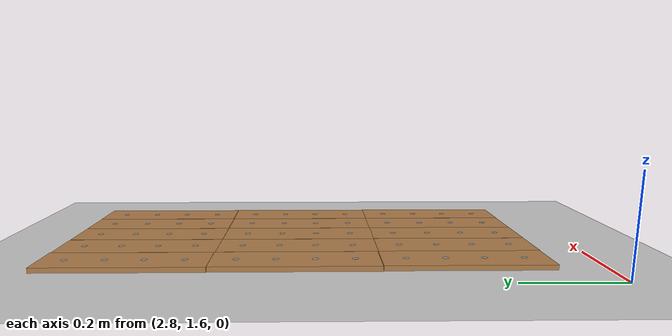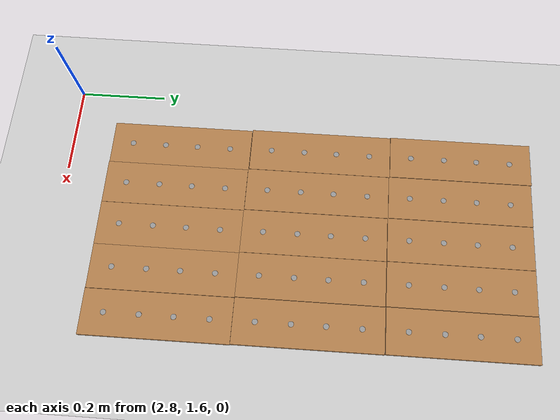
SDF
<sdf version="1.7">
 <world name="default">
  <model name="ground_plane">
   <static>1</static>
   <link name="link">
    <collision name="collision">
     <geometry><plane><normal>0 0 1</normal><size>100 100</size></plane></geometry>
     <surface><friction><ode><mu>100</mu><mu2>50</mu2></ode></friction></surface>
    </collision>
    <visual name="visual">
     <cast_shadows>0</cast_shadows>
     <geometry><plane><normal>0 0 1</normal><size>100 100</size></plane></geometry>
     <material>
      <script><uri>file://media/materials/scripts/gazebo.material</uri><name>Gazebo/Grey</name></script>
     </material>
    </visual>
   </link>
  </model>
  <model name="wooden_board">
   <link name="base">
    <pose>0 0 0.00523 0 -0 0</pose>
    <inertial>
     <mass>0.2765</mass>
     <inertia>
      <ixx>0.0025148</ixx>
      <ixy>0</ixy>
      <ixz>0</ixz>
      <iyy>0.00024037</iyy>
      <iyz>0</iyz>
      <izz>0.00275013</izz>
     </inertia>
    </inertial>
    <collision name="collision">
     <geometry><box><size>0.1016 0.3302 0.01046</size></box></geometry>
     <surface>
      <contact>
       <poissons_ratio>0.347</poissons_ratio>
       <elastic_modulus>8.8e+09</elastic_modulus>
       <ode><kp>100000</kp><kd>100</kd><max_vel>100</max_vel><min_depth>0.001</min_depth></ode>
      </contact>
      <friction>
       <torsional>
        <coefficient>1</coefficient>
        <use_patch_radius>0</use_patch_radius>
        <surface_radius>0.01</surface_radius>
       </torsional>
      </friction>
     </surface>
    </collision>
    <visual name="visual">
     <geometry><box><size>0.1016 0.3302 0.01046</size></box></geometry>
     <material>
      <script><uri>file://media/materials/scripts/gazebo.material</uri><name>Gazebo/Wood</name></script>
     </material>
    </visual>
    <visual name="tee_nut_1">
     <pose>0 -0.116 0 0 -0 0</pose>
     <geometry><cylinder><radius>0.00635</radius><length>0.0105646</length></cylinder></geometry>
     <material>
      <script><uri>file://media/materials/scripts/gazebo.material</uri><name>Gazebo/Grey</name></script>
     </material>
    </visual>
    <visual name="tee_nut_2">
     <pose>0 -0.038 0 0 -0 0</pose>
     <geometry><cylinder><radius>0.00635</radius><length>0.0105646</length></cylinder></geometry>
     <material>
      <script><uri>file://media/materials/scripts/gazebo.material</uri><name>Gazebo/Grey</name></script>
     </material>
    </visual>
    <visual name="tee_nut_3">
     <pose>0 0.038 0 0 -0 0</pose>
     <geometry><cylinder><radius>0.00635</radius><length>0.0105646</length></cylinder></geometry>
     <material>
      <script><uri>file://media/materials/scripts/gazebo.material</uri><name>Gazebo/Grey</name></script>
     </material>
    </visual>
    <visual name="tee_nut_4">
     <pose>0 0.116 0 0 -0 0</pose>
     <geometry><cylinder><radius>0.00635</radius><length>0.0105646</length></cylinder></geometry>
     <material>
      <script><uri>file://media/materials/scripts/gazebo.material</uri><name>Gazebo/Grey</name></script>
     </material>
    </visual>
   </link>
   <pose>2.92931 1.86181 -0.001007 0 -0 -5.4e-05</pose>
  </model>
  <model name="wooden_board_clone">
   <link name="base">
    <pose>0 0 0.00523 0 -0 0</pose>
    <inertial>
     <mass>0.2765</mass>
     <inertia>
      <ixx>0.0025148</ixx>
      <ixy>0</ixy>
      <ixz>0</ixz>
      <iyy>0.00024037</iyy>
      <iyz>0</iyz>
      <izz>0.00275013</izz>
     </inertia>
    </inertial>
    <collision name="collision">
     <geometry><box><size>0.1016 0.3302 0.01046</size></box></geometry>
     <surface>
      <contact>
       <poissons_ratio>0.347</poissons_ratio>
       <elastic_modulus>8.8e+09</elastic_modulus>
       <ode><kp>100000</kp><kd>100</kd><max_vel>100</max_vel><min_depth>0.001</min_depth></ode>
      </contact>
      <friction>
       <torsional>
        <coefficient>1</coefficient>
        <use_patch_radius>0</use_patch_radius>
        <surface_radius>0.01</surface_radius>
       </torsional>
      </friction>
     </surface>
    </collision>
    <visual name="visual">
     <geometry><box><size>0.1016 0.3302 0.01046</size></box></geometry>
     <material>
      <script><uri>file://media/materials/scripts/gazebo.material</uri><name>Gazebo/Wood</name></script>
     </material>
    </visual>
    <visual name="tee_nut_1">
     <pose>0 -0.116 0 0 -0 0</pose>
     <geometry><cylinder><radius>0.00635</radius><length>0.0105646</length></cylinder></geometry>
     <material>
      <script><uri>file://media/materials/scripts/gazebo.material</uri><name>Gazebo/Grey</name></script>
     </material>
    </visual>
    <visual name="tee_nut_2">
     <pose>0 -0.038 0 0 -0 0</pose>
     <geometry><cylinder><radius>0.00635</radius><length>0.0105646</length></cylinder></geometry>
     <material>
      <script><uri>file://media/materials/scripts/gazebo.material</uri><name>Gazebo/Grey</name></script>
     </material>
    </visual>
    <visual name="tee_nut_3">
     <pose>0 0.038 0 0 -0 0</pose>
     <geometry><cylinder><radius>0.00635</radius><length>0.0105646</length></cylinder></geometry>
     <material>
      <script><uri>file://media/materials/scripts/gazebo.material</uri><name>Gazebo/Grey</name></script>
     </material>
    </visual>
    <visual name="tee_nut_4">
     <pose>0 0.116 0 0 -0 0</pose>
     <geometry><cylinder><radius>0.00635</radius><length>0.0105646</length></cylinder></geometry>
     <material>
      <script><uri>file://media/materials/scripts/gazebo.material</uri><name>Gazebo/Grey</name></script>
     </material>
    </visual>
   </link>
   <pose>3.03066 1.8608 -0.001007 -0 -0 -0</pose>
  </model>
  <model name="wooden_board_clone_0">
   <link name="base">
    <pose>0 0 0.00523 0 -0 0</pose>
    <inertial>
     <mass>0.2765</mass>
     <inertia>
      <ixx>0.0025148</ixx>
      <ixy>0</ixy>
      <ixz>0</ixz>
      <iyy>0.00024037</iyy>
      <iyz>0</iyz>
      <izz>0.00275013</izz>
     </inertia>
    </inertial>
    <collision name="collision">
     <geometry><box><size>0.1016 0.3302 0.01046</size></box></geometry>
     <surface>
      <contact>
       <poissons_ratio>0.347</poissons_ratio>
       <elastic_modulus>8.8e+09</elastic_modulus>
       <ode><kp>100000</kp><kd>100</kd><max_vel>100</max_vel><min_depth>0.001</min_depth></ode>
      </contact>
      <friction>
       <torsional>
        <coefficient>1</coefficient>
        <use_patch_radius>0</use_patch_radius>
        <surface_radius>0.01</surface_radius>
       </torsional>
      </friction>
     </surface>
    </collision>
    <visual name="visual">
     <geometry><box><size>0.1016 0.3302 0.01046</size></box></geometry>
     <material>
      <script><uri>file://media/materials/scripts/gazebo.material</uri><name>Gazebo/Wood</name></script>
     </material>
    </visual>
    <visual name="tee_nut_1">
     <pose>0 -0.116 0 0 -0 0</pose>
     <geometry><cylinder><radius>0.00635</radius><length>0.0105646</length></cylinder></geometry>
     <material>
      <script><uri>file://media/materials/scripts/gazebo.material</uri><name>Gazebo/Grey</name></script>
     </material>
    </visual>
    <visual name="tee_nut_2">
     <pose>0 -0.038 0 0 -0 0</pose>
     <geometry><cylinder><radius>0.00635</radius><length>0.0105646</length></cylinder></geometry>
     <material>
      <script><uri>file://media/materials/scripts/gazebo.material</uri><name>Gazebo/Grey</name></script>
     </material>
    </visual>
    <visual name="tee_nut_3">
     <pose>0 0.038 0 0 -0 0</pose>
     <geometry><cylinder><radius>0.00635</radius><length>0.0105646</length></cylinder></geometry>
     <material>
      <script><uri>file://media/materials/scripts/gazebo.material</uri><name>Gazebo/Grey</name></script>
     </material>
    </visual>
    <visual name="tee_nut_4">
     <pose>0 0.116 0 0 -0 0</pose>
     <geometry><cylinder><radius>0.00635</radius><length>0.0105646</length></cylinder></geometry>
     <material>
      <script><uri>file://media/materials/scripts/gazebo.material</uri><name>Gazebo/Grey</name></script>
     </material>
    </visual>
   </link>
   <pose>3.1325 1.86061 -0.001007 0 -0 0</pose>
  </model>
  <model name="wooden_board_clone_1">
   <link name="base">
    <pose>0 0 0.00523 0 -0 0</pose>
    <inertial>
     <mass>0.2765</mass>
     <inertia>
      <ixx>0.0025148</ixx>
      <ixy>0</ixy>
      <ixz>0</ixz>
      <iyy>0.00024037</iyy>
      <iyz>0</iyz>
      <izz>0.00275013</izz>
     </inertia>
    </inertial>
    <collision name="collision">
     <geometry><box><size>0.1016 0.3302 0.01046</size></box></geometry>
     <surface>
      <contact>
       <poissons_ratio>0.347</poissons_ratio>
       <elastic_modulus>8.8e+09</elastic_modulus>
       <ode><kp>100000</kp><kd>100</kd><max_vel>100</max_vel><min_depth>0.001</min_depth></ode>
      </contact>
      <friction>
       <torsional>
        <coefficient>1</coefficient>
        <use_patch_radius>0</use_patch_radius>
        <surface_radius>0.01</surface_radius>
       </torsional>
      </friction>
     </surface>
    </collision>
    <visual name="visual">
     <geometry><box><size>0.1016 0.3302 0.01046</size></box></geometry>
     <material>
      <script><uri>file://media/materials/scripts/gazebo.material</uri><name>Gazebo/Wood</name></script>
     </material>
    </visual>
    <visual name="tee_nut_1">
     <pose>0 -0.116 0 0 -0 0</pose>
     <geometry><cylinder><radius>0.00635</radius><length>0.0105646</length></cylinder></geometry>
     <material>
      <script><uri>file://media/materials/scripts/gazebo.material</uri><name>Gazebo/Grey</name></script>
     </material>
    </visual>
    <visual name="tee_nut_2">
     <pose>0 -0.038 0 0 -0 0</pose>
     <geometry><cylinder><radius>0.00635</radius><length>0.0105646</length></cylinder></geometry>
     <material>
      <script><uri>file://media/materials/scripts/gazebo.material</uri><name>Gazebo/Grey</name></script>
     </material>
    </visual>
    <visual name="tee_nut_3">
     <pose>0 0.038 0 0 -0 0</pose>
     <geometry><cylinder><radius>0.00635</radius><length>0.0105646</length></cylinder></geometry>
     <material>
      <script><uri>file://media/materials/scripts/gazebo.material</uri><name>Gazebo/Grey</name></script>
     </material>
    </visual>
    <visual name="tee_nut_4">
     <pose>0 0.116 0 0 -0 0</pose>
     <geometry><cylinder><radius>0.00635</radius><length>0.0105646</length></cylinder></geometry>
     <material>
      <script><uri>file://media/materials/scripts/gazebo.material</uri><name>Gazebo/Grey</name></script>
     </material>
    </visual>
   </link>
   <pose>3.23405 1.86073 -0.001007 -0 -0 -0</pose>
  </model>
  <model name="wooden_board_clone_2">
   <link name="base">
    <pose>0 0 0.00523 0 -0 0</pose>
    <inertial>
     <mass>0.2765</mass>
     <inertia>
      <ixx>0.0025148</ixx>
      <ixy>0</ixy>
      <ixz>0</ixz>
      <iyy>0.00024037</iyy>
      <iyz>0</iyz>
      <izz>0.00275013</izz>
     </inertia>
    </inertial>
    <collision name="collision">
     <geometry><box><size>0.1016 0.3302 0.01046</size></box></geometry>
     <surface>
      <contact>
       <poissons_ratio>0.347</poissons_ratio>
       <elastic_modulus>8.8e+09</elastic_modulus>
       <ode><kp>100000</kp><kd>100</kd><max_vel>100</max_vel><min_depth>0.001</min_depth></ode>
      </contact>
      <friction>
       <torsional>
        <coefficient>1</coefficient>
        <use_patch_radius>0</use_patch_radius>
        <surface_radius>0.01</surface_radius>
       </torsional>
      </friction>
     </surface>
    </collision>
    <visual name="visual">
     <geometry><box><size>0.1016 0.3302 0.01046</size></box></geometry>
     <material>
      <script><uri>file://media/materials/scripts/gazebo.material</uri><name>Gazebo/Wood</name></script>
     </material>
    </visual>
    <visual name="tee_nut_1">
     <pose>0 -0.116 0 0 -0 0</pose>
     <geometry><cylinder><radius>0.00635</radius><length>0.0105646</length></cylinder></geometry>
     <material>
      <script><uri>file://media/materials/scripts/gazebo.material</uri><name>Gazebo/Grey</name></script>
     </material>
    </visual>
    <visual name="tee_nut_2">
     <pose>0 -0.038 0 0 -0 0</pose>
     <geometry><cylinder><radius>0.00635</radius><length>0.0105646</length></cylinder></geometry>
     <material>
      <script><uri>file://media/materials/scripts/gazebo.material</uri><name>Gazebo/Grey</name></script>
     </material>
    </visual>
    <visual name="tee_nut_3">
     <pose>0 0.038 0 0 -0 0</pose>
     <geometry><cylinder><radius>0.00635</radius><length>0.0105646</length></cylinder></geometry>
     <material>
      <script><uri>file://media/materials/scripts/gazebo.material</uri><name>Gazebo/Grey</name></script>
     </material>
    </visual>
    <visual name="tee_nut_4">
     <pose>0 0.116 0 0 -0 0</pose>
     <geometry><cylinder><radius>0.00635</radius><length>0.0105646</length></cylinder></geometry>
     <material>
      <script><uri>file://media/materials/scripts/gazebo.material</uri><name>Gazebo/Grey</name></script>
     </material>
    </visual>
   </link>
   <pose>3.33629 1.86003 -0.001007 0 -0 0</pose>
  </model>
  <model name="wooden_board_clone_13">
   <link name="base">
    <pose>0 0 0.00523 0 -0 0</pose>
    <inertial>
     <mass>0.2765</mass>
     <inertia>
      <ixx>0.0025148</ixx>
      <ixy>0</ixy>
      <ixz>0</ixz>
      <iyy>0.00024037</iyy>
      <iyz>0</iyz>
      <izz>0.00275013</izz>
     </inertia>
    </inertial>
    <collision name="collision">
     <geometry><box><size>0.1016 0.3302 0.01046</size></box></geometry>
     <surface>
      <contact>
       <poissons_ratio>0.347</poissons_ratio>
       <elastic_modulus>8.8e+09</elastic_modulus>
       <ode><kp>100000</kp><kd>100</kd><max_vel>100</max_vel><min_depth>0.001</min_depth></ode>
      </contact>
      <friction>
       <torsional>
        <coefficient>1</coefficient>
        <use_patch_radius>0</use_patch_radius>
        <surface_radius>0.01</surface_radius>
       </torsional>
      </friction>
     </surface>
    </collision>
    <visual name="visual">
     <geometry><box><size>0.1016 0.3302 0.01046</size></box></geometry>
     <material>
      <script><uri>file://media/materials/scripts/gazebo.material</uri><name>Gazebo/Wood</name></script>
     </material>
    </visual>
    <visual name="tee_nut_1">
     <pose>0 -0.116 0 0 -0 0</pose>
     <geometry><cylinder><radius>0.00635</radius><length>0.0105646</length></cylinder></geometry>
     <material>
      <script><uri>file://media/materials/scripts/gazebo.material</uri><name>Gazebo/Grey</name></script>
     </material>
    </visual>
    <visual name="tee_nut_2">
     <pose>0 -0.038 0 0 -0 0</pose>
     <geometry><cylinder><radius>0.00635</radius><length>0.0105646</length></cylinder></geometry>
     <material>
      <script><uri>file://media/materials/scripts/gazebo.material</uri><name>Gazebo/Grey</name></script>
     </material>
    </visual>
    <visual name="tee_nut_3">
     <pose>0 0.038 0 0 -0 0</pose>
     <geometry><cylinder><radius>0.00635</radius><length>0.0105646</length></cylinder></geometry>
     <material>
      <script><uri>file://media/materials/scripts/gazebo.material</uri><name>Gazebo/Grey</name></script>
     </material>
    </visual>
    <visual name="tee_nut_4">
     <pose>0 0.116 0 0 -0 0</pose>
     <geometry><cylinder><radius>0.00635</radius><length>0.0105646</length></cylinder></geometry>
     <material>
      <script><uri>file://media/materials/scripts/gazebo.material</uri><name>Gazebo/Grey</name></script>
     </material>
    </visual>
   </link>
   <pose>3.33522 2.19045 -0.001007 0 -0 0</pose>
  </model>
  <model name="wooden_board_clone_14">
   <link name="base">
    <pose>0 0 0.00523 0 -0 0</pose>
    <inertial>
     <mass>0.2765</mass>
     <inertia>
      <ixx>0.0025148</ixx>
      <ixy>0</ixy>
      <ixz>0</ixz>
      <iyy>0.00024037</iyy>
      <iyz>0</iyz>
      <izz>0.00275013</izz>
     </inertia>
    </inertial>
    <collision name="collision">
     <geometry><box><size>0.1016 0.3302 0.01046</size></box></geometry>
     <surface>
      <contact>
       <poissons_ratio>0.347</poissons_ratio>
       <elastic_modulus>8.8e+09</elastic_modulus>
       <ode><kp>100000</kp><kd>100</kd><max_vel>100</max_vel><min_depth>0.001</min_depth></ode>
      </contact>
      <friction>
       <torsional>
        <coefficient>1</coefficient>
        <use_patch_radius>0</use_patch_radius>
        <surface_radius>0.01</surface_radius>
       </torsional>
      </friction>
     </surface>
    </collision>
    <visual name="visual">
     <geometry><box><size>0.1016 0.3302 0.01046</size></box></geometry>
     <material>
      <script><uri>file://media/materials/scripts/gazebo.material</uri><name>Gazebo/Wood</name></script>
     </material>
    </visual>
    <visual name="tee_nut_1">
     <pose>0 -0.116 0 0 -0 0</pose>
     <geometry><cylinder><radius>0.00635</radius><length>0.0105646</length></cylinder></geometry>
     <material>
      <script><uri>file://media/materials/scripts/gazebo.material</uri><name>Gazebo/Grey</name></script>
     </material>
    </visual>
    <visual name="tee_nut_2">
     <pose>0 -0.038 0 0 -0 0</pose>
     <geometry><cylinder><radius>0.00635</radius><length>0.0105646</length></cylinder></geometry>
     <material>
      <script><uri>file://media/materials/scripts/gazebo.material</uri><name>Gazebo/Grey</name></script>
     </material>
    </visual>
    <visual name="tee_nut_3">
     <pose>0 0.038 0 0 -0 0</pose>
     <geometry><cylinder><radius>0.00635</radius><length>0.0105646</length></cylinder></geometry>
     <material>
      <script><uri>file://media/materials/scripts/gazebo.material</uri><name>Gazebo/Grey</name></script>
     </material>
    </visual>
    <visual name="tee_nut_4">
     <pose>0 0.116 0 0 -0 0</pose>
     <geometry><cylinder><radius>0.00635</radius><length>0.0105646</length></cylinder></geometry>
     <material>
      <script><uri>file://media/materials/scripts/gazebo.material</uri><name>Gazebo/Grey</name></script>
     </material>
    </visual>
   </link>
   <pose>3.23269 2.19005 -0.001007 0 -0 0</pose>
  </model>
  <model name="wooden_board_clone_15">
   <link name="base">
    <pose>0 0 0.00523 0 -0 0</pose>
    <inertial>
     <mass>0.2765</mass>
     <inertia>
      <ixx>0.0025148</ixx>
      <ixy>0</ixy>
      <ixz>0</ixz>
      <iyy>0.00024037</iyy>
      <iyz>0</iyz>
      <izz>0.00275013</izz>
     </inertia>
    </inertial>
    <collision name="collision">
     <geometry><box><size>0.1016 0.3302 0.01046</size></box></geometry>
     <surface>
      <contact>
       <poissons_ratio>0.347</poissons_ratio>
       <elastic_modulus>8.8e+09</elastic_modulus>
       <ode><kp>100000</kp><kd>100</kd><max_vel>100</max_vel><min_depth>0.001</min_depth></ode>
      </contact>
      <friction>
       <torsional>
        <coefficient>1</coefficient>
        <use_patch_radius>0</use_patch_radius>
        <surface_radius>0.01</surface_radius>
       </torsional>
      </friction>
     </surface>
    </collision>
    <visual name="visual">
     <geometry><box><size>0.1016 0.3302 0.01046</size></box></geometry>
     <material>
      <script><uri>file://media/materials/scripts/gazebo.material</uri><name>Gazebo/Wood</name></script>
     </material>
    </visual>
    <visual name="tee_nut_1">
     <pose>0 -0.116 0 0 -0 0</pose>
     <geometry><cylinder><radius>0.00635</radius><length>0.0105646</length></cylinder></geometry>
     <material>
      <script><uri>file://media/materials/scripts/gazebo.material</uri><name>Gazebo/Grey</name></script>
     </material>
    </visual>
    <visual name="tee_nut_2">
     <pose>0 -0.038 0 0 -0 0</pose>
     <geometry><cylinder><radius>0.00635</radius><length>0.0105646</length></cylinder></geometry>
     <material>
      <script><uri>file://media/materials/scripts/gazebo.material</uri><name>Gazebo/Grey</name></script>
     </material>
    </visual>
    <visual name="tee_nut_3">
     <pose>0 0.038 0 0 -0 0</pose>
     <geometry><cylinder><radius>0.00635</radius><length>0.0105646</length></cylinder></geometry>
     <material>
      <script><uri>file://media/materials/scripts/gazebo.material</uri><name>Gazebo/Grey</name></script>
     </material>
    </visual>
    <visual name="tee_nut_4">
     <pose>0 0.116 0 0 -0 0</pose>
     <geometry><cylinder><radius>0.00635</radius><length>0.0105646</length></cylinder></geometry>
     <material>
      <script><uri>file://media/materials/scripts/gazebo.material</uri><name>Gazebo/Grey</name></script>
     </material>
    </visual>
   </link>
   <pose>3.13073 2.19028 -0.001007 -0 -0 -0</pose>
  </model>
  <model name="wooden_board_clone_16">
   <link name="base">
    <pose>0 0 0.00523 0 -0 0</pose>
    <inertial>
     <mass>0.2765</mass>
     <inertia>
      <ixx>0.0025148</ixx>
      <ixy>0</ixy>
      <ixz>0</ixz>
      <iyy>0.00024037</iyy>
      <iyz>0</iyz>
      <izz>0.00275013</izz>
     </inertia>
    </inertial>
    <collision name="collision">
     <geometry><box><size>0.1016 0.3302 0.01046</size></box></geometry>
     <surface>
      <contact>
       <poissons_ratio>0.347</poissons_ratio>
       <elastic_modulus>8.8e+09</elastic_modulus>
       <ode><kp>100000</kp><kd>100</kd><max_vel>100</max_vel><min_depth>0.001</min_depth></ode>
      </contact>
      <friction>
       <torsional>
        <coefficient>1</coefficient>
        <use_patch_radius>0</use_patch_radius>
        <surface_radius>0.01</surface_radius>
       </torsional>
      </friction>
     </surface>
    </collision>
    <visual name="visual">
     <geometry><box><size>0.1016 0.3302 0.01046</size></box></geometry>
     <material>
      <script><uri>file://media/materials/scripts/gazebo.material</uri><name>Gazebo/Wood</name></script>
     </material>
    </visual>
    <visual name="tee_nut_1">
     <pose>0 -0.116 0 0 -0 0</pose>
     <geometry><cylinder><radius>0.00635</radius><length>0.0105646</length></cylinder></geometry>
     <material>
      <script><uri>file://media/materials/scripts/gazebo.material</uri><name>Gazebo/Grey</name></script>
     </material>
    </visual>
    <visual name="tee_nut_2">
     <pose>0 -0.038 0 0 -0 0</pose>
     <geometry><cylinder><radius>0.00635</radius><length>0.0105646</length></cylinder></geometry>
     <material>
      <script><uri>file://media/materials/scripts/gazebo.material</uri><name>Gazebo/Grey</name></script>
     </material>
    </visual>
    <visual name="tee_nut_3">
     <pose>0 0.038 0 0 -0 0</pose>
     <geometry><cylinder><radius>0.00635</radius><length>0.0105646</length></cylinder></geometry>
     <material>
      <script><uri>file://media/materials/scripts/gazebo.material</uri><name>Gazebo/Grey</name></script>
     </material>
    </visual>
    <visual name="tee_nut_4">
     <pose>0 0.116 0 0 -0 0</pose>
     <geometry><cylinder><radius>0.00635</radius><length>0.0105646</length></cylinder></geometry>
     <material>
      <script><uri>file://media/materials/scripts/gazebo.material</uri><name>Gazebo/Grey</name></script>
     </material>
    </visual>
   </link>
   <pose>3.02857 2.19129 -0.001007 0 -0 -5.5e-05</pose>
  </model>
  <model name="wooden_board_clone_17">
   <link name="base">
    <pose>0 0 0.00523 0 -0 0</pose>
    <inertial>
     <mass>0.2765</mass>
     <inertia>
      <ixx>0.0025148</ixx>
      <ixy>0</ixy>
      <ixz>0</ixz>
      <iyy>0.00024037</iyy>
      <iyz>0</iyz>
      <izz>0.00275013</izz>
     </inertia>
    </inertial>
    <collision name="collision">
     <geometry><box><size>0.1016 0.3302 0.01046</size></box></geometry>
     <surface>
      <contact>
       <poissons_ratio>0.347</poissons_ratio>
       <elastic_modulus>8.8e+09</elastic_modulus>
       <ode><kp>100000</kp><kd>100</kd><max_vel>100</max_vel><min_depth>0.001</min_depth></ode>
      </contact>
      <friction>
       <torsional>
        <coefficient>1</coefficient>
        <use_patch_radius>0</use_patch_radius>
        <surface_radius>0.01</surface_radius>
       </torsional>
      </friction>
     </surface>
    </collision>
    <visual name="visual">
     <geometry><box><size>0.1016 0.3302 0.01046</size></box></geometry>
     <material>
      <script><uri>file://media/materials/scripts/gazebo.material</uri><name>Gazebo/Wood</name></script>
     </material>
    </visual>
    <visual name="tee_nut_1">
     <pose>0 -0.116 0 0 -0 0</pose>
     <geometry><cylinder><radius>0.00635</radius><length>0.0105646</length></cylinder></geometry>
     <material>
      <script><uri>file://media/materials/scripts/gazebo.material</uri><name>Gazebo/Grey</name></script>
     </material>
    </visual>
    <visual name="tee_nut_2">
     <pose>0 -0.038 0 0 -0 0</pose>
     <geometry><cylinder><radius>0.00635</radius><length>0.0105646</length></cylinder></geometry>
     <material>
      <script><uri>file://media/materials/scripts/gazebo.material</uri><name>Gazebo/Grey</name></script>
     </material>
    </visual>
    <visual name="tee_nut_3">
     <pose>0 0.038 0 0 -0 0</pose>
     <geometry><cylinder><radius>0.00635</radius><length>0.0105646</length></cylinder></geometry>
     <material>
      <script><uri>file://media/materials/scripts/gazebo.material</uri><name>Gazebo/Grey</name></script>
     </material>
    </visual>
    <visual name="tee_nut_4">
     <pose>0 0.116 0 0 -0 0</pose>
     <geometry><cylinder><radius>0.00635</radius><length>0.0105646</length></cylinder></geometry>
     <material>
      <script><uri>file://media/materials/scripts/gazebo.material</uri><name>Gazebo/Grey</name></script>
     </material>
    </visual>
   </link>
   <pose>2.92665 2.19303 -0.001007 0 -0 -5.3e-05</pose>
  </model>
  <model name="wooden_board_clone_23">
   <link name="base">
    <pose>0 0 0.00523 0 -0 0</pose>
    <inertial>
     <mass>0.2765</mass>
     <inertia>
      <ixx>0.0025148</ixx>
      <ixy>0</ixy>
      <ixz>0</ixz>
      <iyy>0.00024037</iyy>
      <iyz>0</iyz>
      <izz>0.00275013</izz>
     </inertia>
    </inertial>
    <collision name="collision">
     <geometry><box><size>0.1016 0.3302 0.01046</size></box></geometry>
     <surface>
      <contact>
       <poissons_ratio>0.347</poissons_ratio>
       <elastic_modulus>8.8e+09</elastic_modulus>
       <ode><kp>100000</kp><kd>100</kd><max_vel>100</max_vel><min_depth>0.001</min_depth></ode>
      </contact>
      <friction>
       <torsional>
        <coefficient>1</coefficient>
        <use_patch_radius>0</use_patch_radius>
        <surface_radius>0.01</surface_radius>
       </torsional>
      </friction>
     </surface>
    </collision>
    <visual name="visual">
     <geometry><box><size>0.1016 0.3302 0.01046</size></box></geometry>
     <material>
      <script><uri>file://media/materials/scripts/gazebo.material</uri><name>Gazebo/Wood</name></script>
     </material>
    </visual>
    <visual name="tee_nut_1">
     <pose>0 -0.116 0 0 -0 0</pose>
     <geometry><cylinder><radius>0.00635</radius><length>0.0105646</length></cylinder></geometry>
     <material>
      <script><uri>file://media/materials/scripts/gazebo.material</uri><name>Gazebo/Grey</name></script>
     </material>
    </visual>
    <visual name="tee_nut_2">
     <pose>0 -0.038 0 0 -0 0</pose>
     <geometry><cylinder><radius>0.00635</radius><length>0.0105646</length></cylinder></geometry>
     <material>
      <script><uri>file://media/materials/scripts/gazebo.material</uri><name>Gazebo/Grey</name></script>
     </material>
    </visual>
    <visual name="tee_nut_3">
     <pose>0 0.038 0 0 -0 0</pose>
     <geometry><cylinder><radius>0.00635</radius><length>0.0105646</length></cylinder></geometry>
     <material>
      <script><uri>file://media/materials/scripts/gazebo.material</uri><name>Gazebo/Grey</name></script>
     </material>
    </visual>
    <visual name="tee_nut_4">
     <pose>0 0.116 0 0 -0 0</pose>
     <geometry><cylinder><radius>0.00635</radius><length>0.0105646</length></cylinder></geometry>
     <material>
      <script><uri>file://media/materials/scripts/gazebo.material</uri><name>Gazebo/Grey</name></script>
     </material>
    </visual>
   </link>
   <pose>3.33469 2.52196 -0.001007 0 0 -5.4e-05</pose>
  </model>
  <model name="wooden_board_clone_24">
   <link name="base">
    <pose>0 0 0.00523 0 -0 0</pose>
    <inertial>
     <mass>0.2765</mass>
     <inertia>
      <ixx>0.0025148</ixx>
      <ixy>0</ixy>
      <ixz>0</ixz>
      <iyy>0.00024037</iyy>
      <iyz>0</iyz>
      <izz>0.00275013</izz>
     </inertia>
    </inertial>
    <collision name="collision">
     <geometry><box><size>0.1016 0.3302 0.01046</size></box></geometry>
     <surface>
      <contact>
       <poissons_ratio>0.347</poissons_ratio>
       <elastic_modulus>8.8e+09</elastic_modulus>
       <ode><kp>100000</kp><kd>100</kd><max_vel>100</max_vel><min_depth>0.001</min_depth></ode>
      </contact>
      <friction>
       <torsional>
        <coefficient>1</coefficient>
        <use_patch_radius>0</use_patch_radius>
        <surface_radius>0.01</surface_radius>
       </torsional>
      </friction>
     </surface>
    </collision>
    <visual name="visual">
     <geometry><box><size>0.1016 0.3302 0.01046</size></box></geometry>
     <material>
      <script><uri>file://media/materials/scripts/gazebo.material</uri><name>Gazebo/Wood</name></script>
     </material>
    </visual>
    <visual name="tee_nut_1">
     <pose>0 -0.116 0 0 -0 0</pose>
     <geometry><cylinder><radius>0.00635</radius><length>0.0105646</length></cylinder></geometry>
     <material>
      <script><uri>file://media/materials/scripts/gazebo.material</uri><name>Gazebo/Grey</name></script>
     </material>
    </visual>
    <visual name="tee_nut_2">
     <pose>0 -0.038 0 0 -0 0</pose>
     <geometry><cylinder><radius>0.00635</radius><length>0.0105646</length></cylinder></geometry>
     <material>
      <script><uri>file://media/materials/scripts/gazebo.material</uri><name>Gazebo/Grey</name></script>
     </material>
    </visual>
    <visual name="tee_nut_3">
     <pose>0 0.038 0 0 -0 0</pose>
     <geometry><cylinder><radius>0.00635</radius><length>0.0105646</length></cylinder></geometry>
     <material>
      <script><uri>file://media/materials/scripts/gazebo.material</uri><name>Gazebo/Grey</name></script>
     </material>
    </visual>
    <visual name="tee_nut_4">
     <pose>0 0.116 0 0 -0 0</pose>
     <geometry><cylinder><radius>0.00635</radius><length>0.0105646</length></cylinder></geometry>
     <material>
      <script><uri>file://media/materials/scripts/gazebo.material</uri><name>Gazebo/Grey</name></script>
     </material>
    </visual>
   </link>
   <pose>3.23202 2.52134 -0.001007 0 0 -5.4e-05</pose>
  </model>
  <model name="wooden_board_clone_25">
   <link name="base">
    <pose>0 0 0.00523 0 -0 0</pose>
    <inertial>
     <mass>0.2765</mass>
     <inertia>
      <ixx>0.0025148</ixx>
      <ixy>0</ixy>
      <ixz>0</ixz>
      <iyy>0.00024037</iyy>
      <iyz>0</iyz>
      <izz>0.00275013</izz>
     </inertia>
    </inertial>
    <collision name="collision">
     <geometry><box><size>0.1016 0.3302 0.01046</size></box></geometry>
     <surface>
      <contact>
       <poissons_ratio>0.347</poissons_ratio>
       <elastic_modulus>8.8e+09</elastic_modulus>
       <ode><kp>100000</kp><kd>100</kd><max_vel>100</max_vel><min_depth>0.001</min_depth></ode>
      </contact>
      <friction>
       <torsional>
        <coefficient>1</coefficient>
        <use_patch_radius>0</use_patch_radius>
        <surface_radius>0.01</surface_radius>
       </torsional>
      </friction>
     </surface>
    </collision>
    <visual name="visual">
     <geometry><box><size>0.1016 0.3302 0.01046</size></box></geometry>
     <material>
      <script><uri>file://media/materials/scripts/gazebo.material</uri><name>Gazebo/Wood</name></script>
     </material>
    </visual>
    <visual name="tee_nut_1">
     <pose>0 -0.116 0 0 -0 0</pose>
     <geometry><cylinder><radius>0.00635</radius><length>0.0105646</length></cylinder></geometry>
     <material>
      <script><uri>file://media/materials/scripts/gazebo.material</uri><name>Gazebo/Grey</name></script>
     </material>
    </visual>
    <visual name="tee_nut_2">
     <pose>0 -0.038 0 0 -0 0</pose>
     <geometry><cylinder><radius>0.00635</radius><length>0.0105646</length></cylinder></geometry>
     <material>
      <script><uri>file://media/materials/scripts/gazebo.material</uri><name>Gazebo/Grey</name></script>
     </material>
    </visual>
    <visual name="tee_nut_3">
     <pose>0 0.038 0 0 -0 0</pose>
     <geometry><cylinder><radius>0.00635</radius><length>0.0105646</length></cylinder></geometry>
     <material>
      <script><uri>file://media/materials/scripts/gazebo.material</uri><name>Gazebo/Grey</name></script>
     </material>
    </visual>
    <visual name="tee_nut_4">
     <pose>0 0.116 0 0 -0 0</pose>
     <geometry><cylinder><radius>0.00635</radius><length>0.0105646</length></cylinder></geometry>
     <material>
      <script><uri>file://media/materials/scripts/gazebo.material</uri><name>Gazebo/Grey</name></script>
     </material>
    </visual>
   </link>
   <pose>3.12987 2.5213 -0.001007 0 0 -5.4e-05</pose>
  </model>
  <model name="wooden_board_clone_26">
   <link name="base">
    <pose>0 0 0.00523 0 -0 0</pose>
    <inertial>
     <mass>0.2765</mass>
     <inertia>
      <ixx>0.0025148</ixx>
      <ixy>0</ixy>
      <ixz>0</ixz>
      <iyy>0.00024037</iyy>
      <iyz>0</iyz>
      <izz>0.00275013</izz>
     </inertia>
    </inertial>
    <collision name="collision">
     <geometry><box><size>0.1016 0.3302 0.01046</size></box></geometry>
     <surface>
      <contact>
       <poissons_ratio>0.347</poissons_ratio>
       <elastic_modulus>8.8e+09</elastic_modulus>
       <ode><kp>100000</kp><kd>100</kd><max_vel>100</max_vel><min_depth>0.001</min_depth></ode>
      </contact>
      <friction>
       <torsional>
        <coefficient>1</coefficient>
        <use_patch_radius>0</use_patch_radius>
        <surface_radius>0.01</surface_radius>
       </torsional>
      </friction>
     </surface>
    </collision>
    <visual name="visual">
     <geometry><box><size>0.1016 0.3302 0.01046</size></box></geometry>
     <material>
      <script><uri>file://media/materials/scripts/gazebo.material</uri><name>Gazebo/Wood</name></script>
     </material>
    </visual>
    <visual name="tee_nut_1">
     <pose>0 -0.116 0 0 -0 0</pose>
     <geometry><cylinder><radius>0.00635</radius><length>0.0105646</length></cylinder></geometry>
     <material>
      <script><uri>file://media/materials/scripts/gazebo.material</uri><name>Gazebo/Grey</name></script>
     </material>
    </visual>
    <visual name="tee_nut_2">
     <pose>0 -0.038 0 0 -0 0</pose>
     <geometry><cylinder><radius>0.00635</radius><length>0.0105646</length></cylinder></geometry>
     <material>
      <script><uri>file://media/materials/scripts/gazebo.material</uri><name>Gazebo/Grey</name></script>
     </material>
    </visual>
    <visual name="tee_nut_3">
     <pose>0 0.038 0 0 -0 0</pose>
     <geometry><cylinder><radius>0.00635</radius><length>0.0105646</length></cylinder></geometry>
     <material>
      <script><uri>file://media/materials/scripts/gazebo.material</uri><name>Gazebo/Grey</name></script>
     </material>
    </visual>
    <visual name="tee_nut_4">
     <pose>0 0.116 0 0 -0 0</pose>
     <geometry><cylinder><radius>0.00635</radius><length>0.0105646</length></cylinder></geometry>
     <material>
      <script><uri>file://media/materials/scripts/gazebo.material</uri><name>Gazebo/Grey</name></script>
     </material>
    </visual>
   </link>
   <pose>3.02753 2.52188 -0.001007 0 -0 -5.4e-05</pose>
  </model>
  <model name="wooden_board_clone_27">
   <link name="base">
    <pose>0 0 0.00523 0 -0 0</pose>
    <inertial>
     <mass>0.2765</mass>
     <inertia>
      <ixx>0.0025148</ixx>
      <ixy>0</ixy>
      <ixz>0</ixz>
      <iyy>0.00024037</iyy>
      <iyz>0</iyz>
      <izz>0.00275013</izz>
     </inertia>
    </inertial>
    <collision name="collision">
     <geometry><box><size>0.1016 0.3302 0.01046</size></box></geometry>
     <surface>
      <contact>
       <poissons_ratio>0.347</poissons_ratio>
       <elastic_modulus>8.8e+09</elastic_modulus>
       <ode><kp>100000</kp><kd>100</kd><max_vel>100</max_vel><min_depth>0.001</min_depth></ode>
      </contact>
      <friction>
       <torsional>
        <coefficient>1</coefficient>
        <use_patch_radius>0</use_patch_radius>
        <surface_radius>0.01</surface_radius>
       </torsional>
      </friction>
     </surface>
    </collision>
    <visual name="visual">
     <geometry><box><size>0.1016 0.3302 0.01046</size></box></geometry>
     <material>
      <script><uri>file://media/materials/scripts/gazebo.material</uri><name>Gazebo/Wood</name></script>
     </material>
    </visual>
    <visual name="tee_nut_1">
     <pose>0 -0.116 0 0 -0 0</pose>
     <geometry><cylinder><radius>0.00635</radius><length>0.0105646</length></cylinder></geometry>
     <material>
      <script><uri>file://media/materials/scripts/gazebo.material</uri><name>Gazebo/Grey</name></script>
     </material>
    </visual>
    <visual name="tee_nut_2">
     <pose>0 -0.038 0 0 -0 0</pose>
     <geometry><cylinder><radius>0.00635</radius><length>0.0105646</length></cylinder></geometry>
     <material>
      <script><uri>file://media/materials/scripts/gazebo.material</uri><name>Gazebo/Grey</name></script>
     </material>
    </visual>
    <visual name="tee_nut_3">
     <pose>0 0.038 0 0 -0 0</pose>
     <geometry><cylinder><radius>0.00635</radius><length>0.0105646</length></cylinder></geometry>
     <material>
      <script><uri>file://media/materials/scripts/gazebo.material</uri><name>Gazebo/Grey</name></script>
     </material>
    </visual>
    <visual name="tee_nut_4">
     <pose>0 0.116 0 0 -0 0</pose>
     <geometry><cylinder><radius>0.00635</radius><length>0.0105646</length></cylinder></geometry>
     <material>
      <script><uri>file://media/materials/scripts/gazebo.material</uri><name>Gazebo/Grey</name></script>
     </material>
    </visual>
   </link>
   <pose>2.92501 2.52383 -0.001007 0 0 -5.4e-05</pose>
  </model>
 </world>
</sdf>
